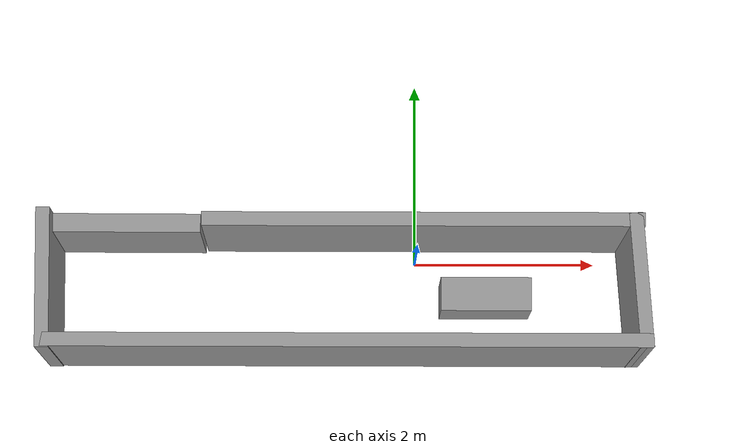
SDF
<?xml version='1.0'?>
<sdf version='1.7'>
  <model name='hongwat'>
    <link name='link_0'>
      <inertial>
        <mass>0.368307</mass>
        <inertia>
          <ixx>0.0348555</ixx>
          <ixy>0</ixy>
          <ixz>0</ixz>
          <iyy>0.0613844</iyy>
          <iyz>0</iyz>
          <izz>0.0348555</izz>
        </inertia>
        <pose>0 0 0 0 -0 0</pose>
      </inertial>
      <pose>0.781914 -0.398271 0.25 0 -0 0</pose>
      <visual name='visual'>
        <pose>0 0 0 0 -0 0</pose>
        <geometry>
          <box>
            <size>1 0.368304 1</size>
          </box>
        </geometry>
        <material>
          <lighting>1</lighting>
          <script>
            <uri>file://media/materials/scripts/gazebo.material</uri>
            <name>Gazebo/Grey</name>
          </script>
          <shader type='pixel'/>
        </material>
        <transparency>0</transparency>
        <cast_shadows>1</cast_shadows>
      </visual>
      <collision name='collision'>
        <laser_retro>0</laser_retro>
        <max_contacts>10</max_contacts>
        <pose>0 0 0 0 -0 0</pose>
        <geometry>
          <box>
            <size>1 0.368304 1</size>
          </box>
        </geometry>
        <surface>
          <friction>
            <ode>
              <mu>1</mu>
              <mu2>1</mu2>
              <fdir1>0 0 0</fdir1>
              <slip1>0</slip1>
              <slip2>0</slip2>
            </ode>
            <torsional>
              <coefficient>1</coefficient>
              <patch_radius>0</patch_radius>
              <surface_radius>0</surface_radius>
              <use_patch_radius>1</use_patch_radius>
              <ode>
                <slip>0</slip>
              </ode>
            </torsional>
          </friction>
          <bounce>
            <restitution_coefficient>0</restitution_coefficient>
            <threshold>1e+06</threshold>
          </bounce>
          <contact>
            <collide_without_contact>0</collide_without_contact>
            <collide_without_contact_bitmask>1</collide_without_contact_bitmask>
            <collide_bitmask>1</collide_bitmask>
            <ode>
              <soft_cfm>0</soft_cfm>
              <soft_erp>0.2</soft_erp>
              <kp>1e+13</kp>
              <kd>1</kd>
              <max_vel>0.01</max_vel>
              <min_depth>0</min_depth>
            </ode>
            <bullet>
              <split_impulse>1</split_impulse>
              <split_impulse_penetration_threshold>-0.01</split_impulse_penetration_threshold>
              <soft_cfm>0</soft_cfm>
              <soft_erp>0.2</soft_erp>
              <kp>1e+13</kp>
              <kd>1</kd>
            </bullet>
          </contact>
        </surface>
      </collision>
    </link>
    <model name='Hong'>
      <pose>-0.781909 0.39827 -0.25 0 -0 0</pose>
      <link name='Door_0'>
        <collision name='Door_0_Collision'>
          <geometry>
            <box>
              <size>1.5993 0.2 2</size>
            </box>
          </geometry>
          <pose>0 0 1 0 -0 0</pose>
        </collision>
        <visual name='Door_0_Visual'>
          <pose>0 0 1 0 -0 0</pose>
          <geometry>
            <box>
              <size>1.5993 0.2 2</size>
            </box>
          </geometry>
          <material>
            <script>
              <uri>file://media/materials/scripts/gazebo.material</uri>
              <name>Gazebo/Grey</name>
            </script>
          </material>
        </visual>
        <pose>-2.36044 -0.136708 0 0 -0 3.13925</pose>
      </link>
      <link name='Wall_0'>
        <collision name='Wall_0_Collision'>
          <geometry>
            <box>
              <size>1.5 0.15 2.5</size>
            </box>
          </geometry>
          <pose>0 0 1.25 0 -0 0</pose>
        </collision>
        <visual name='Wall_0_Visual'>
          <pose>0 0 1.25 0 -0 0</pose>
          <geometry>
            <box>
              <size>1.5 0.15 2.5</size>
            </box>
          </geometry>
          <material>
            <script>
              <uri>file://media/materials/scripts/gazebo.material</uri>
              <name>Gazebo/Grey</name>
            </script>
            <ambient>1 1 1 1</ambient>
          </material>
          <meta>
            <layer>0</layer>
          </meta>
        </visual>
        <pose>-3.23288 -0.7775 0 0 -0 -1.5708</pose>
      </link>
      <link name='Wall_1'>
        <collision name='Wall_1_Collision'>
          <geometry>
            <box>
              <size>6.61001 0.15 2.5</size>
            </box>
          </geometry>
          <pose>0 0 1.25 0 -0 0</pose>
        </collision>
        <visual name='Wall_1_Visual'>
          <pose>0 0 1.25 0 -0 0</pose>
          <geometry>
            <box>
              <size>6.61001 0.15 2.5</size>
            </box>
          </geometry>
          <material>
            <script>
              <uri>file://media/materials/scripts/gazebo.material</uri>
              <name>Gazebo/Grey</name>
            </script>
            <ambient>1 1 1 1</ambient>
          </material>
          <meta>
            <layer>0</layer>
          </meta>
        </visual>
        <pose>-0.002877 -1.4425 0 0 -0 0</pose>
      </link>
      <link name='Wall_2'>
        <collision name='Wall_2_Collision'>
          <geometry>
            <box>
              <size>1.4513 0.15 2.5</size>
            </box>
          </geometry>
          <pose>0 0 1.25 0 -0 0</pose>
        </collision>
        <visual name='Wall_2_Visual'>
          <pose>0 0 1.25 0 -0 0</pose>
          <geometry>
            <box>
              <size>1.4513 0.15 2.5</size>
            </box>
          </geometry>
          <material>
            <script>
              <uri>file://media/materials/scripts/gazebo.material</uri>
              <name>Gazebo/Grey</name>
            </script>
            <ambient>1 1 1 1</ambient>
          </material>
          <meta>
            <layer>0</layer>
          </meta>
        </visual>
        <pose>3.17509 -0.793935 0 0 -0 1.65086</pose>
      </link>
      <link name='Wall_4'>
        <collision name='Wall_4_Collision'>
          <geometry>
            <box>
              <size>4.75 0.15 2.5</size>
            </box>
          </geometry>
          <pose>0 0 1.25 0 -0 0</pose>
        </collision>
        <visual name='Wall_4_Visual'>
          <pose>0 0 1.25 0 -0 0</pose>
          <geometry>
            <box>
              <size>4.75 0.15 2.5</size>
            </box>
          </geometry>
          <material>
            <script>
              <uri>file://media/materials/scripts/gazebo.material</uri>
              <name>Gazebo/Grey</name>
            </script>
            <ambient>1 1 1 1</ambient>
          </material>
          <meta>
            <layer>0</layer>
          </meta>
        </visual>
        <pose>0.839969 -0.14537 0 0 -0 3.14159</pose>
      </link>
      <static>1</static>
    </model>
    <static>0</static>
    <allow_auto_disable>1</allow_auto_disable>
  </model>
</sdf>
